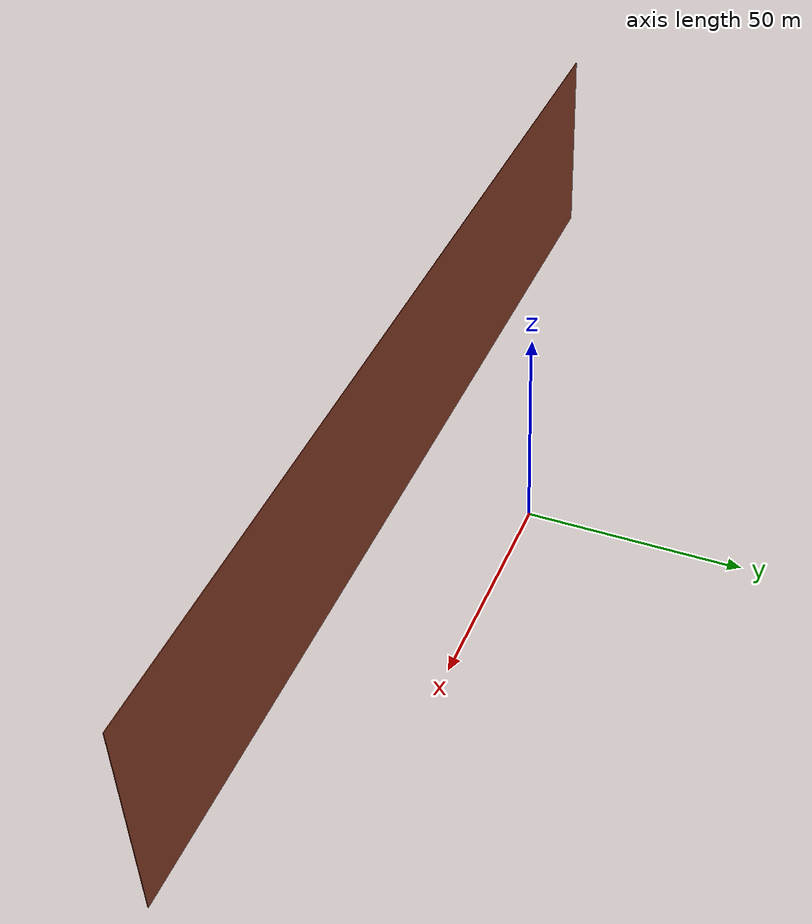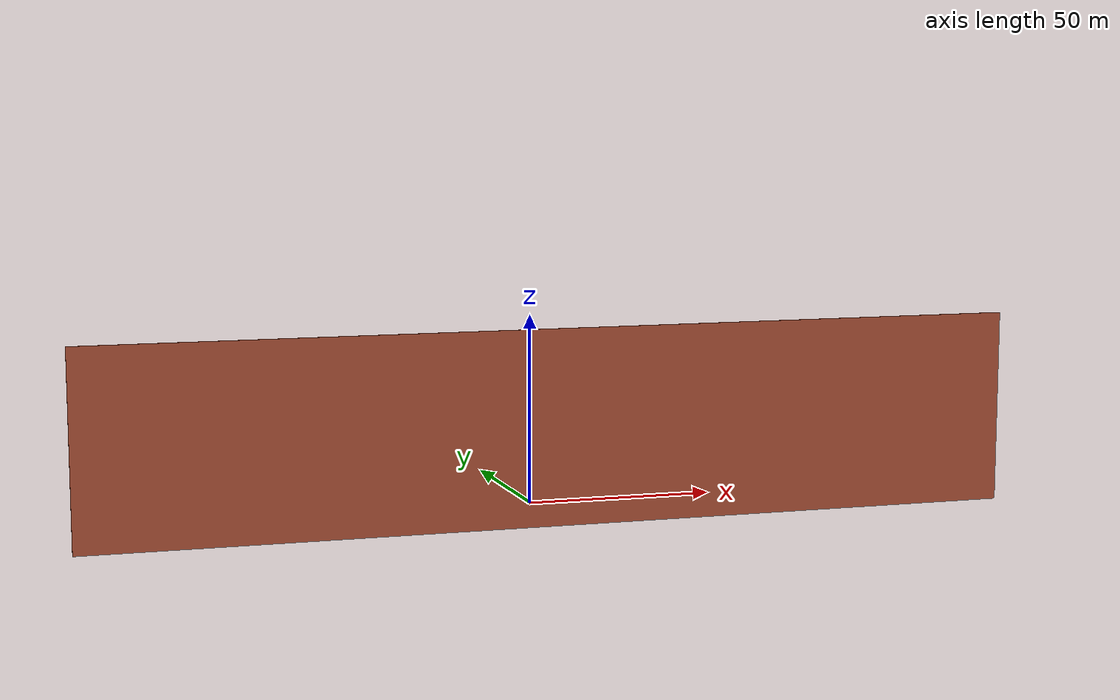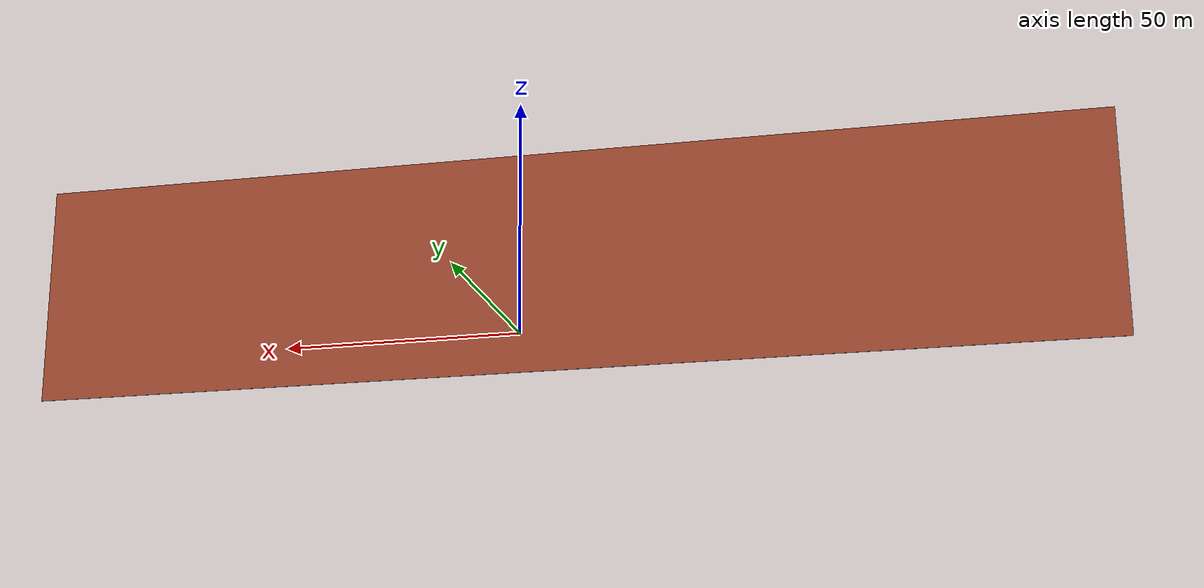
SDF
<?xml version='1.0'?>
<sdf version='1.6'>
  <model name='wall'>
    <pose frame=''>-0.491997 -30.177 0 0 -0 0</pose>
    <link name='Wall_18'>
      <collision name='Wall_18_Collision'>
        <geometry>
          <box>
            <size>242 0.15 50</size>
          </box>
        </geometry>
        <pose frame=''>0 0 25 0 -0 0</pose>
      </collision>
      <visual name='Wall_18_Visual'>
        <pose frame=''>0 0 25 0 -0 0</pose>
        <geometry>
          <box>
            <size>242 0.15 50</size>
          </box>
        </geometry>
        <material>
          <script>
            <uri>file://media/materials/scripts/gazebo.material</uri>
            <name>Gazebo/Bricks</name>
          </script>
          <ambient>1 1 1 1</ambient>
        </material>
        <meta>
          <layer>0</layer>
        </meta>
      </visual>
      <pose frame=''>-3e-06 0 0 0 -0 0</pose>
    </link>
    <static>1</static>
  </model>
</sdf>
